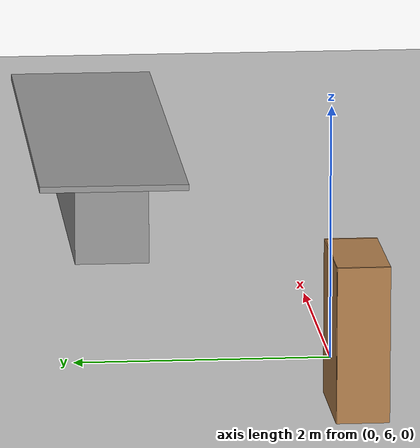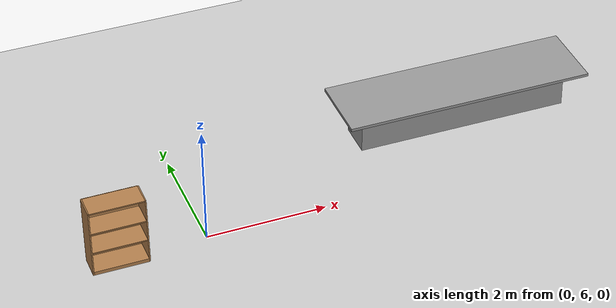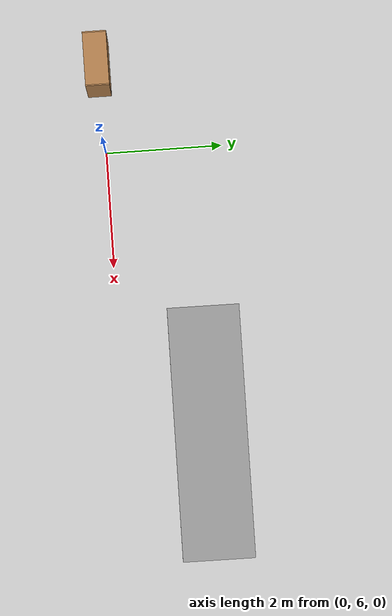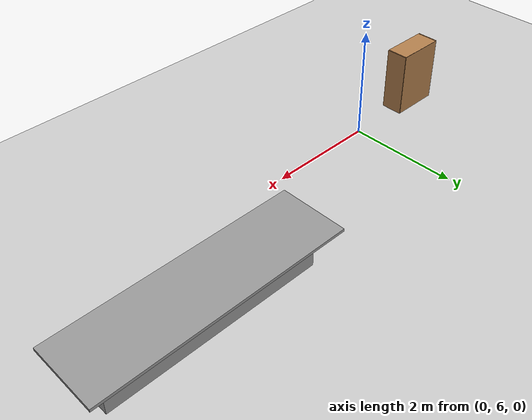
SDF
<sdf version="1.7">
 <world name="default">
  <model name="ground_plane">
   <static>1</static>
   <link name="link">
    <collision name="collision">
     <geometry><plane><normal>0 0 1</normal><size>100 100</size></plane></geometry>
     <surface>
      <contact><collide_bitmask>65535</collide_bitmask></contact>
      <friction><ode><mu>100</mu><mu2>50</mu2></ode></friction>
     </surface>
    </collision>
    <visual name="visual">
     <cast_shadows>0</cast_shadows>
     <geometry><plane><normal>0 0 1</normal><size>100 100</size></plane></geometry>
     <material>
      <script><uri>file://media/materials/scripts/gazebo.material</uri><name>Gazebo/Grey</name></script>
     </material>
    </visual>
   </link>
  </model>
  <model name="bookshelf_3">
   <static>1</static>
   <link name="link">
    <inertial><mass>1</mass></inertial>
    <collision name="back">
     <pose>0 0.005 0.6 0 -0 0</pose>
     <geometry><box><size>0.9 0.01 1.2</size></box></geometry>
    </collision>
    <visual name="visual1">
     <pose>0 0.005 0.6 0 -0 0</pose>
     <geometry><box><size>0.9 0.01 1.2</size></box></geometry>
     <material>
      <script><uri>file://media/materials/scripts/gazebo.material</uri><name>Gazebo/Wood</name></script>
     </material>
    </visual>
    <collision name="left_side">
     <pose>0.45 -0.195 0.6 0 -0 0</pose>
     <geometry><box><size>0.02 0.4 1.2</size></box></geometry>
    </collision>
    <visual name="visual2">
     <pose>0.45 -0.195 0.6 0 -0 0</pose>
     <geometry><box><size>0.02 0.4 1.2</size></box></geometry>
     <material>
      <script><uri>file://media/materials/scripts/gazebo.material</uri><name>Gazebo/Wood</name></script>
     </material>
    </visual>
    <collision name="right_side">
     <pose>-0.45 -0.195 0.6 0 -0 0</pose>
     <geometry><box><size>0.02 0.4 1.2</size></box></geometry>
    </collision>
    <visual name="visual3">
     <pose>-0.45 -0.195 0.6 0 -0 0</pose>
     <geometry><box><size>0.02 0.4 1.2</size></box></geometry>
     <material>
      <script><uri>file://media/materials/scripts/gazebo.material</uri><name>Gazebo/Wood</name></script>
     </material>
    </visual>
    <collision name="bottom">
     <pose>0 -0.195 0.03 0 -0 0</pose>
     <geometry><box><size>0.88 0.4 0.06</size></box></geometry>
    </collision>
    <visual name="visual4">
     <pose>0 -0.195 0.03 0 -0 0</pose>
     <geometry><box><size>0.88 0.4 0.06</size></box></geometry>
     <material>
      <script><uri>file://media/materials/scripts/gazebo.material</uri><name>Gazebo/Wood</name></script>
     </material>
    </visual>
    <collision name="top">
     <pose>0 -0.195 1.19 0 -0 0</pose>
     <geometry><box><size>0.88 0.4 0.02</size></box></geometry>
    </collision>
    <visual name="visual5">
     <pose>0 -0.195 1.19 0 -0 0</pose>
     <geometry><box><size>0.88 0.4 0.02</size></box></geometry>
     <material>
      <script><uri>file://media/materials/scripts/gazebo.material</uri><name>Gazebo/Wood</name></script>
     </material>
    </visual>
    <collision name="low_shelf">
     <pose>0 -0.195 0.43 0 -0 0</pose>
     <geometry><box><size>0.88 0.4 0.02</size></box></geometry>
    </collision>
    <visual name="visual6">
     <pose>0 -0.195 0.43 0 -0 0</pose>
     <geometry><box><size>0.88 0.4 0.02</size></box></geometry>
     <material>
      <script><uri>file://media/materials/scripts/gazebo.material</uri><name>Gazebo/Wood</name></script>
     </material>
    </visual>
    <collision name="high_shelf">
     <pose>0 -0.195 0.8 0 -0 0</pose>
     <geometry><box><size>0.88 0.4 0.02</size></box></geometry>
    </collision>
    <visual name="visual7">
     <pose>0 -0.195 0.8 0 -0 0</pose>
     <geometry><box><size>0.88 0.4 0.02</size></box></geometry>
     <material>
      <script><uri>file://media/materials/scripts/gazebo.material</uri><name>Gazebo/Wood</name></script>
     </material>
    </visual>
   </link>
   <pose>-1.45117 6.15146 0 0 -0 0</pose>
  </model>
  <model name="box_table1">
   <link name="link">
    <inertial>
     <mass>1</mass>
     <inertia>
      <ixx>0.166667</ixx>
      <ixy>0</ixy>
      <ixz>0</ixz>
      <iyy>0.166667</iyy>
      <iyz>0</iyz>
      <izz>0.166667</izz>
     </inertia>
    </inertial>
    <pose>0.328012 0.55915 -0 0 -0 0</pose>
    <visual name="visual">
     <geometry><box><size>0.6096 3.6576 0.6858</size></box></geometry>
     <material>
      <script><name>Gazebo/Grey</name><uri>file://media/materials/scripts/gazebo.material</uri></script>
      <shader type="pixel"><normal_map>__default__</normal_map></shader>
      <ambient>0.3 0.3 0.3 1</ambient>
      <diffuse>0.7 0.7 0.7 1</diffuse>
      <specular>0.01 0.01 0.01 1</specular>
      <emissive>0 0 0 1</emissive>
     </material>
    </visual>
    <collision name="collision">
     <geometry><box><size>0.6096 3.6576 0.6858</size></box></geometry>
     <surface>
      <friction>
       <ode><mu>1</mu><mu2>1</mu2><fdir1>0 0 0</fdir1><slip1>0</slip1><slip2>0</slip2></ode>
       <torsional>
        <coefficient>1</coefficient>
        <patch_radius>0</patch_radius>
        <surface_radius>0</surface_radius>
        <use_patch_radius>1</use_patch_radius>
        <ode><slip>0</slip></ode>
       </torsional>
      </friction>
      <bounce><restitution_coefficient>0</restitution_coefficient><threshold>1e+06</threshold></bounce>
      <contact>
       <collide_without_contact>0</collide_without_contact>
       <collide_without_contact_bitmask>1</collide_without_contact_bitmask>
       <collide_bitmask>1</collide_bitmask>
       <ode>
        <soft_cfm>0</soft_cfm>
        <soft_erp>0.2</soft_erp>
        <kp>1e+13</kp>
        <kd>1</kd>
        <max_vel>0.01</max_vel>
        <min_depth>0</min_depth>
       </ode>
       <bullet>
        <split_impulse>1</split_impulse>
        <split_impulse_penetration_threshold>-0.01</split_impulse_penetration_threshold>
        <soft_cfm>0</soft_cfm>
        <soft_erp>0.2</soft_erp>
        <kp>1e+13</kp>
        <kd>1</kd>
       </bullet>
      </contact>
     </surface>
    </collision>
   </link>
   <link name="link_0">
    <inertial>
     <mass>1</mass>
     <inertia>
      <ixx>0.166667</ixx>
      <ixy>0</ixy>
      <ixz>0</ixz>
      <iyy>0.166667</iyy>
      <iyz>0</iyz>
      <izz>0.166667</izz>
     </inertia>
    </inertial>
    <pose>0.328012 0.55915 0.363031 0 -0 0</pose>
    <visual name="visual">
     <geometry><box><size>1.2192 4.2672 0.0508</size></box></geometry>
     <material>
      <lighting>1</lighting>
      <script><uri>file://media/materials/scripts/gazebo.material</uri><name>Gazebo/Grey</name></script>
      <shader type="pixel"><normal_map>__default__</normal_map></shader>
      <ambient>0.3 0.3 0.3 1</ambient>
      <diffuse>0.7 0.7 0.7 1</diffuse>
      <specular>0.01 0.01 0.01 1</specular>
      <emissive>0 0 0 1</emissive>
     </material>
    </visual>
    <collision name="collision">
     <geometry><box><size>1.2192 4.2672 0.0508</size></box></geometry>
     <surface>
      <friction>
       <ode><mu>1</mu><mu2>1</mu2><fdir1>0 0 0</fdir1><slip1>0</slip1><slip2>0</slip2></ode>
       <torsional>
        <coefficient>1</coefficient>
        <patch_radius>0</patch_radius>
        <surface_radius>0</surface_radius>
        <use_patch_radius>1</use_patch_radius>
        <ode><slip>0</slip></ode>
       </torsional>
      </friction>
      <bounce><restitution_coefficient>0</restitution_coefficient><threshold>1e+06</threshold></bounce>
      <contact>
       <collide_without_contact>0</collide_without_contact>
       <collide_without_contact_bitmask>1</collide_without_contact_bitmask>
       <collide_bitmask>1</collide_bitmask>
       <ode>
        <soft_cfm>0</soft_cfm>
        <soft_erp>0.2</soft_erp>
        <kp>1e+13</kp>
        <kd>1</kd>
        <max_vel>0.01</max_vel>
        <min_depth>0</min_depth>
       </ode>
       <bullet>
        <split_impulse>1</split_impulse>
        <split_impulse_penetration_threshold>-0.01</split_impulse_penetration_threshold>
        <soft_cfm>0</soft_cfm>
        <soft_erp>0.2</soft_erp>
        <kp>1e+13</kp>
        <kd>1</kd>
       </bullet>
      </contact>
     </surface>
    </collision>
   </link>
   <joint name="link_0_JOINT_0" type="fixed">
    <parent>link_0</parent>
    <child>link</child>
    <physics>
     <ode><limit><cfm>0</cfm><erp>0.2</erp></limit><suspension><cfm>0</cfm><erp>0.2</erp></suspension></ode>
    </physics>
   </joint>
   <joint name="link_0_JOINT_1" type="fixed">
    <parent>link_0</parent>
    <child>link</child>
    <physics>
     <ode><limit><cfm>0</cfm><erp>0.2</erp></limit><suspension><cfm>0</cfm><erp>0.2</erp></suspension></ode>
    </physics>
   </joint>
   <static>0</static>
   <pose>5.4834 7.1356 0.342901 0 1e-06 1.56723</pose>
  </model>
 </world>
</sdf>
